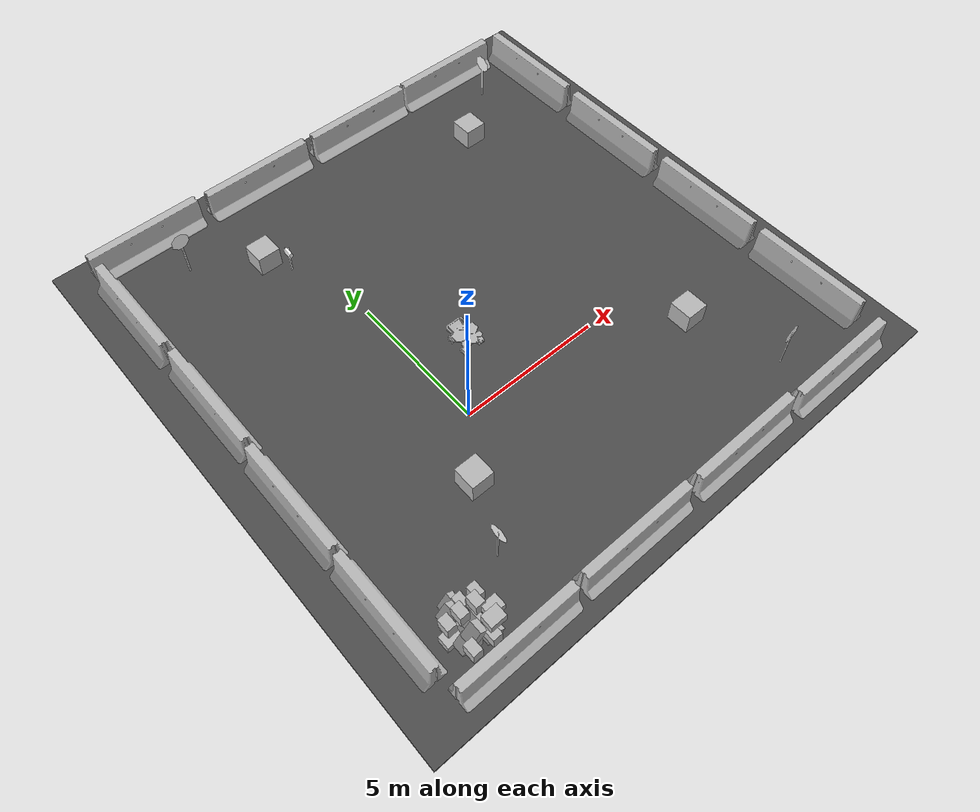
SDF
<sdf version="1.7">
 <model name="world">
  <model name="boxes">
   <model name="cardboard_box">
    <pose>-0.491644 0.289158 0.15 0 -0 0</pose>
    <link name="link">
     <inertial>
      <mass>2</mass>
      <inertia>
       <ixx>0.0416667</ixx>
       <ixy>0</ixy>
       <ixz>0</ixz>
       <iyy>0.0566667</iyy>
       <iyz>0</iyz>
       <izz>0.0683333</izz>
      </inertia>
     </inertial>
     <collision name="collision">
      <geometry><box><size>0.5 0.4 0.3</size></box></geometry>
      <surface>
       <friction><ode><mu>1</mu><mu2>1</mu2></ode></friction>
       <contact><ode><kp>1e+07</kp><kd>1</kd><min_depth>0.001</min_depth><max_vel>0.1</max_vel></ode></contact>
      </surface>
     </collision>
     <visual name="visual">
      <pose>0 0 -0.15 0 -0 0</pose>
      <geometry>
       <mesh><uri>model://cardboard_box/meshes/cardboard_box.dae</uri><scale>1.25932 1.00745 0.755591</scale></mesh>
      </geometry>
     </visual>
    </link>
   </model>
   <model name="cardboard_box_clone">
    <pose>0.503217 0.516816 0.293646 3.14159 -1.53575 3.14159</pose>
    <link name="link">
     <inertial>
      <mass>2</mass>
      <inertia>
       <ixx>0.0416667</ixx>
       <ixy>0</ixy>
       <ixz>0</ixz>
       <iyy>0.0566667</iyy>
       <iyz>0</iyz>
       <izz>0.0683333</izz>
      </inertia>
     </inertial>
     <collision name="collision">
      <geometry><box><size>0.5 0.4 0.3</size></box></geometry>
      <surface>
       <friction><ode><mu>1</mu><mu2>1</mu2></ode></friction>
       <contact><ode><kp>1e+07</kp><kd>1</kd><min_depth>0.001</min_depth><max_vel>0.1</max_vel></ode></contact>
      </surface>
     </collision>
     <visual name="visual">
      <pose>0 0 -0.15 0 -0 0</pose>
      <geometry>
       <mesh><uri>model://cardboard_box/meshes/cardboard_box.dae</uri><scale>1.25932 1.00745 0.755591</scale></mesh>
      </geometry>
     </visual>
    </link>
   </model>
   <model name="cardboard_box_clone_0">
    <pose>-0.187598 0.737458 0.371241 0 -0.858752 0</pose>
    <link name="link">
     <inertial>
      <mass>2</mass>
      <inertia>
       <ixx>0.0416667</ixx>
       <ixy>0</ixy>
       <ixz>0</ixz>
       <iyy>0.0566667</iyy>
       <iyz>0</iyz>
       <izz>0.0683333</izz>
      </inertia>
     </inertial>
     <collision name="collision">
      <geometry><box><size>0.5 0.4 0.3</size></box></geometry>
      <surface>
       <friction><ode><mu>1</mu><mu2>1</mu2></ode></friction>
       <contact><ode><kp>1e+07</kp><kd>1</kd><min_depth>0.001</min_depth><max_vel>0.1</max_vel></ode></contact>
      </surface>
     </collision>
     <visual name="visual">
      <pose>0 0 -0.15 0 -0 0</pose>
      <geometry>
       <mesh><uri>model://cardboard_box/meshes/cardboard_box.dae</uri><scale>1.25932 1.00745 0.755591</scale></mesh>
      </geometry>
     </visual>
    </link>
   </model>
   <model name="cardboard_box_clone_0_clone">
    <pose>-0.306536 -0.085275 0.371241 0 -0.858752 0</pose>
    <link name="link">
     <inertial>
      <mass>2</mass>
      <inertia>
       <ixx>0.0416667</ixx>
       <ixy>0</ixy>
       <ixz>0</ixz>
       <iyy>0.0566667</iyy>
       <iyz>0</iyz>
       <izz>0.0683333</izz>
      </inertia>
     </inertial>
     <collision name="collision">
      <geometry><box><size>0.5 0.4 0.3</size></box></geometry>
      <surface>
       <friction><ode><mu>1</mu><mu2>1</mu2></ode></friction>
       <contact><ode><kp>1e+07</kp><kd>1</kd><min_depth>0.001</min_depth><max_vel>0.1</max_vel></ode></contact>
      </surface>
     </collision>
     <visual name="visual">
      <pose>0 0 -0.15 0 -0 0</pose>
      <geometry>
       <mesh><uri>model://cardboard_box/meshes/cardboard_box.dae</uri><scale>1.25932 1.00745 0.755591</scale></mesh>
      </geometry>
     </visual>
    </link>
   </model>
   <model name="cardboard_box_clone_0_clone_0">
    <pose>-0.148256 -0.203641 1.0062 0 -0.858752 0</pose>
    <link name="link">
     <inertial>
      <mass>2</mass>
      <inertia>
       <ixx>0.0416667</ixx>
       <ixy>0</ixy>
       <ixz>0</ixz>
       <iyy>0.0566667</iyy>
       <iyz>0</iyz>
       <izz>0.0683333</izz>
      </inertia>
     </inertial>
     <collision name="collision">
      <geometry><box><size>0.5 0.4 0.3</size></box></geometry>
      <surface>
       <friction><ode><mu>1</mu><mu2>1</mu2></ode></friction>
       <contact><ode><kp>1e+07</kp><kd>1</kd><min_depth>0.001</min_depth><max_vel>0.1</max_vel></ode></contact>
      </surface>
     </collision>
     <visual name="visual">
      <pose>0 0 -0.15 0 -0 0</pose>
      <geometry>
       <mesh><uri>model://cardboard_box/meshes/cardboard_box.dae</uri><scale>1.25932 1.00745 0.755591</scale></mesh>
      </geometry>
     </visual>
    </link>
   </model>
   <model name="cardboard_box_clone_0_clone_1">
    <pose>0.355638 -0.289562 0.371241 0 -0.858752 0</pose>
    <link name="link">
     <inertial>
      <mass>2</mass>
      <inertia>
       <ixx>0.0416667</ixx>
       <ixy>0</ixy>
       <ixz>0</ixz>
       <iyy>0.0566667</iyy>
       <iyz>0</iyz>
       <izz>0.0683333</izz>
      </inertia>
     </inertial>
     <collision name="collision">
      <geometry><box><size>0.5 0.4 0.3</size></box></geometry>
      <surface>
       <friction><ode><mu>1</mu><mu2>1</mu2></ode></friction>
       <contact><ode><kp>1e+07</kp><kd>1</kd><min_depth>0.001</min_depth><max_vel>0.1</max_vel></ode></contact>
      </surface>
     </collision>
     <visual name="visual">
      <pose>0 0 -0.15 0 -0 0</pose>
      <geometry>
       <mesh><uri>model://cardboard_box/meshes/cardboard_box.dae</uri><scale>1.25932 1.00745 0.755591</scale></mesh>
      </geometry>
     </visual>
    </link>
   </model>
   <model name="cardboard_box_clone_1">
    <pose>0.270936 -0.443428 1.77978 0 -0 0</pose>
    <link name="link">
     <inertial>
      <mass>2</mass>
      <inertia>
       <ixx>0.0416667</ixx>
       <ixy>0</ixy>
       <ixz>0</ixz>
       <iyy>0.0566667</iyy>
       <iyz>0</iyz>
       <izz>0.0683333</izz>
      </inertia>
     </inertial>
     <collision name="collision">
      <geometry><box><size>0.5 0.4 0.3</size></box></geometry>
      <surface>
       <friction><ode><mu>1</mu><mu2>1</mu2></ode></friction>
       <contact><ode><kp>1e+07</kp><kd>1</kd><min_depth>0.001</min_depth><max_vel>0.1</max_vel></ode></contact>
      </surface>
     </collision>
     <visual name="visual">
      <pose>0 0 -0.15 0 -0 0</pose>
      <geometry>
       <mesh><uri>model://cardboard_box/meshes/cardboard_box.dae</uri><scale>1.25932 1.00745 0.755591</scale></mesh>
      </geometry>
     </visual>
    </link>
   </model>
   <model name="cardboard_box_clone_clone">
    <pose>0.207477 -0.499968 0.864015 3.14159 -1.53575 3.14159</pose>
    <link name="link">
     <inertial>
      <mass>2</mass>
      <inertia>
       <ixx>0.0416667</ixx>
       <ixy>0</ixy>
       <ixz>0</ixz>
       <iyy>0.0566667</iyy>
       <iyz>0</iyz>
       <izz>0.0683333</izz>
      </inertia>
     </inertial>
     <collision name="collision">
      <geometry><box><size>0.5 0.4 0.3</size></box></geometry>
      <surface>
       <friction><ode><mu>1</mu><mu2>1</mu2></ode></friction>
       <contact><ode><kp>1e+07</kp><kd>1</kd><min_depth>0.001</min_depth><max_vel>0.1</max_vel></ode></contact>
      </surface>
     </collision>
     <visual name="visual">
      <pose>0 0 -0.15 0 -0 0</pose>
      <geometry>
       <mesh><uri>model://cardboard_box/meshes/cardboard_box.dae</uri><scale>1.25932 1.00745 0.755591</scale></mesh>
      </geometry>
     </visual>
    </link>
   </model>
   <model name="cardboard_box_clone_clone_0">
    <pose>-0.422969 -0.499982 0.945083 3.14159 -1.53575 3.14159</pose>
    <link name="link">
     <inertial>
      <mass>2</mass>
      <inertia>
       <ixx>0.0416667</ixx>
       <ixy>0</ixy>
       <ixz>0</ixz>
       <iyy>0.0566667</iyy>
       <iyz>0</iyz>
       <izz>0.0683333</izz>
      </inertia>
     </inertial>
     <collision name="collision">
      <geometry><box><size>0.5 0.4 0.3</size></box></geometry>
      <surface>
       <friction><ode><mu>1</mu><mu2>1</mu2></ode></friction>
       <contact><ode><kp>1e+07</kp><kd>1</kd><min_depth>0.001</min_depth><max_vel>0.1</max_vel></ode></contact>
      </surface>
     </collision>
     <visual name="visual">
      <pose>0 0 -0.15 0 -0 0</pose>
      <geometry>
       <mesh><uri>model://cardboard_box/meshes/cardboard_box.dae</uri><scale>1.25932 1.00745 0.755591</scale></mesh>
      </geometry>
     </visual>
    </link>
   </model>
   <model name="cardboard_box_clone_clone_clone">
    <pose>-0.058913 0.417894 0.864015 3.14159 -1.53575 3.14159</pose>
    <link name="link">
     <inertial>
      <mass>2</mass>
      <inertia>
       <ixx>0.0416667</ixx>
       <ixy>0</ixy>
       <ixz>0</ixz>
       <iyy>0.0566667</iyy>
       <iyz>0</iyz>
       <izz>0.0683333</izz>
      </inertia>
     </inertial>
     <collision name="collision">
      <geometry><box><size>0.5 0.4 0.3</size></box></geometry>
      <surface>
       <friction><ode><mu>1</mu><mu2>1</mu2></ode></friction>
       <contact><ode><kp>1e+07</kp><kd>1</kd><min_depth>0.001</min_depth><max_vel>0.1</max_vel></ode></contact>
      </surface>
     </collision>
     <visual name="visual">
      <pose>0 0 -0.15 0 -0 0</pose>
      <geometry>
       <mesh><uri>model://cardboard_box/meshes/cardboard_box.dae</uri><scale>1.25932 1.00745 0.755591</scale></mesh>
      </geometry>
     </visual>
    </link>
   </model>
   <model name="cardboard_box_clone_clone_clone_0">
    <pose>0.417599 0.381366 0.864015 3.14159 -1.53575 3.14159</pose>
    <link name="link">
     <inertial>
      <mass>2</mass>
      <inertia>
       <ixx>0.0416667</ixx>
       <ixy>0</ixy>
       <ixz>0</ixz>
       <iyy>0.0566667</iyy>
       <iyz>0</iyz>
       <izz>0.0683333</izz>
      </inertia>
     </inertial>
     <collision name="collision">
      <geometry><box><size>0.5 0.4 0.3</size></box></geometry>
      <surface>
       <friction><ode><mu>1</mu><mu2>1</mu2></ode></friction>
       <contact><ode><kp>1e+07</kp><kd>1</kd><min_depth>0.001</min_depth><max_vel>0.1</max_vel></ode></contact>
      </surface>
     </collision>
     <visual name="visual">
      <pose>0 0 -0.15 0 -0 0</pose>
      <geometry>
       <mesh><uri>model://cardboard_box/meshes/cardboard_box.dae</uri><scale>1.25932 1.00745 0.755591</scale></mesh>
      </geometry>
     </visual>
    </link>
   </model>
   <model name="cardboard_box_clone_clone_clone_1">
    <pose>-0.489667 0.393093 0.864015 3.14159 -1.53575 3.14159</pose>
    <link name="link">
     <inertial>
      <mass>2</mass>
      <inertia>
       <ixx>0.0416667</ixx>
       <ixy>0</ixy>
       <ixz>0</ixz>
       <iyy>0.0566667</iyy>
       <iyz>0</iyz>
       <izz>0.0683333</izz>
      </inertia>
     </inertial>
     <collision name="collision">
      <geometry><box><size>0.5 0.4 0.3</size></box></geometry>
      <surface>
       <friction><ode><mu>1</mu><mu2>1</mu2></ode></friction>
       <contact><ode><kp>1e+07</kp><kd>1</kd><min_depth>0.001</min_depth><max_vel>0.1</max_vel></ode></contact>
      </surface>
     </collision>
     <visual name="visual">
      <pose>0 0 -0.15 0 -0 0</pose>
      <geometry>
       <mesh><uri>model://cardboard_box/meshes/cardboard_box.dae</uri><scale>1.25932 1.00745 0.755591</scale></mesh>
      </geometry>
     </visual>
    </link>
   </model>
   <static>0</static>
   <pose>-4.01139 -4.85188 -0.226943 0 -0 0</pose>
  </model>
  <model name="boxes_0">
   <model name="cardboard_box">
    <pose>-0.491644 0.289158 0.15 0 -0 0</pose>
    <link name="link">
     <inertial>
      <mass>2</mass>
      <inertia>
       <ixx>0.0416667</ixx>
       <ixy>0</ixy>
       <ixz>0</ixz>
       <iyy>0.0566667</iyy>
       <iyz>0</iyz>
       <izz>0.0683333</izz>
      </inertia>
     </inertial>
     <collision name="collision">
      <geometry><box><size>0.5 0.4 0.3</size></box></geometry>
      <surface>
       <friction><ode><mu>1</mu><mu2>1</mu2></ode></friction>
       <contact><ode><kp>1e+07</kp><kd>1</kd><min_depth>0.001</min_depth><max_vel>0.1</max_vel></ode></contact>
      </surface>
     </collision>
     <visual name="visual">
      <pose>0 0 -0.15 0 -0 0</pose>
      <geometry>
       <mesh><uri>model://cardboard_box/meshes/cardboard_box.dae</uri><scale>1.25932 1.00745 0.755591</scale></mesh>
      </geometry>
     </visual>
    </link>
   </model>
   <model name="cardboard_box_clone">
    <pose>0.503217 0.516816 0.293646 3.14159 -1.53575 3.14159</pose>
    <link name="link">
     <inertial>
      <mass>2</mass>
      <inertia>
       <ixx>0.0416667</ixx>
       <ixy>0</ixy>
       <ixz>0</ixz>
       <iyy>0.0566667</iyy>
       <iyz>0</iyz>
       <izz>0.0683333</izz>
      </inertia>
     </inertial>
     <collision name="collision">
      <geometry><box><size>0.5 0.4 0.3</size></box></geometry>
      <surface>
       <friction><ode><mu>1</mu><mu2>1</mu2></ode></friction>
       <contact><ode><kp>1e+07</kp><kd>1</kd><min_depth>0.001</min_depth><max_vel>0.1</max_vel></ode></contact>
      </surface>
     </collision>
     <visual name="visual">
      <pose>0 0 -0.15 0 -0 0</pose>
      <geometry>
       <mesh><uri>model://cardboard_box/meshes/cardboard_box.dae</uri><scale>1.25932 1.00745 0.755591</scale></mesh>
      </geometry>
     </visual>
    </link>
   </model>
   <model name="cardboard_box_clone_0">
    <pose>-0.187598 0.737458 0.371241 0 -0.858752 0</pose>
    <link name="link">
     <inertial>
      <mass>2</mass>
      <inertia>
       <ixx>0.0416667</ixx>
       <ixy>0</ixy>
       <ixz>0</ixz>
       <iyy>0.0566667</iyy>
       <iyz>0</iyz>
       <izz>0.0683333</izz>
      </inertia>
     </inertial>
     <collision name="collision">
      <geometry><box><size>0.5 0.4 0.3</size></box></geometry>
      <surface>
       <friction><ode><mu>1</mu><mu2>1</mu2></ode></friction>
       <contact><ode><kp>1e+07</kp><kd>1</kd><min_depth>0.001</min_depth><max_vel>0.1</max_vel></ode></contact>
      </surface>
     </collision>
     <visual name="visual">
      <pose>0 0 -0.15 0 -0 0</pose>
      <geometry>
       <mesh><uri>model://cardboard_box/meshes/cardboard_box.dae</uri><scale>1.25932 1.00745 0.755591</scale></mesh>
      </geometry>
     </visual>
    </link>
   </model>
   <model name="cardboard_box_clone_0_clone">
    <pose>-0.306536 -0.085275 0.371241 0 -0.858752 0</pose>
    <link name="link">
     <inertial>
      <mass>2</mass>
      <inertia>
       <ixx>0.0416667</ixx>
       <ixy>0</ixy>
       <ixz>0</ixz>
       <iyy>0.0566667</iyy>
       <iyz>0</iyz>
       <izz>0.0683333</izz>
      </inertia>
     </inertial>
     <collision name="collision">
      <geometry><box><size>0.5 0.4 0.3</size></box></geometry>
      <surface>
       <friction><ode><mu>1</mu><mu2>1</mu2></ode></friction>
       <contact><ode><kp>1e+07</kp><kd>1</kd><min_depth>0.001</min_depth><max_vel>0.1</max_vel></ode></contact>
      </surface>
     </collision>
     <visual name="visual">
      <pose>0 0 -0.15 0 -0 0</pose>
      <geometry>
       <mesh><uri>model://cardboard_box/meshes/cardboard_box.dae</uri><scale>1.25932 1.00745 0.755591</scale></mesh>
      </geometry>
     </visual>
    </link>
   </model>
   <model name="cardboard_box_clone_0_clone_0">
    <pose>-0.148256 -0.203641 1.0062 0 -0.858752 0</pose>
    <link name="link">
     <inertial>
      <mass>2</mass>
      <inertia>
       <ixx>0.0416667</ixx>
       <ixy>0</ixy>
       <ixz>0</ixz>
       <iyy>0.0566667</iyy>
       <iyz>0</iyz>
       <izz>0.0683333</izz>
      </inertia>
     </inertial>
     <collision name="collision">
      <geometry><box><size>0.5 0.4 0.3</size></box></geometry>
      <surface>
       <friction><ode><mu>1</mu><mu2>1</mu2></ode></friction>
       <contact><ode><kp>1e+07</kp><kd>1</kd><min_depth>0.001</min_depth><max_vel>0.1</max_vel></ode></contact>
      </surface>
     </collision>
     <visual name="visual">
      <pose>0 0 -0.15 0 -0 0</pose>
      <geometry>
       <mesh><uri>model://cardboard_box/meshes/cardboard_box.dae</uri><scale>1.25932 1.00745 0.755591</scale></mesh>
      </geometry>
     </visual>
    </link>
   </model>
   <model name="cardboard_box_clone_0_clone_1">
    <pose>0.355638 -0.289562 0.371241 0 -0.858752 0</pose>
    <link name="link">
     <inertial>
      <mass>2</mass>
      <inertia>
       <ixx>0.0416667</ixx>
       <ixy>0</ixy>
       <ixz>0</ixz>
       <iyy>0.0566667</iyy>
       <iyz>0</iyz>
       <izz>0.0683333</izz>
      </inertia>
     </inertial>
     <collision name="collision">
      <geometry><box><size>0.5 0.4 0.3</size></box></geometry>
      <surface>
       <friction><ode><mu>1</mu><mu2>1</mu2></ode></friction>
       <contact><ode><kp>1e+07</kp><kd>1</kd><min_depth>0.001</min_depth><max_vel>0.1</max_vel></ode></contact>
      </surface>
     </collision>
     <visual name="visual">
      <pose>0 0 -0.15 0 -0 0</pose>
      <geometry>
       <mesh><uri>model://cardboard_box/meshes/cardboard_box.dae</uri><scale>1.25932 1.00745 0.755591</scale></mesh>
      </geometry>
     </visual>
    </link>
   </model>
   <model name="cardboard_box_clone_1">
    <pose>0.270936 -0.443428 1.77978 0 -0 0</pose>
    <link name="link">
     <inertial>
      <mass>2</mass>
      <inertia>
       <ixx>0.0416667</ixx>
       <ixy>0</ixy>
       <ixz>0</ixz>
       <iyy>0.0566667</iyy>
       <iyz>0</iyz>
       <izz>0.0683333</izz>
      </inertia>
     </inertial>
     <collision name="collision">
      <geometry><box><size>0.5 0.4 0.3</size></box></geometry>
      <surface>
       <friction><ode><mu>1</mu><mu2>1</mu2></ode></friction>
       <contact><ode><kp>1e+07</kp><kd>1</kd><min_depth>0.001</min_depth><max_vel>0.1</max_vel></ode></contact>
      </surface>
     </collision>
     <visual name="visual">
      <pose>0 0 -0.15 0 -0 0</pose>
      <geometry>
       <mesh><uri>model://cardboard_box/meshes/cardboard_box.dae</uri><scale>1.25932 1.00745 0.755591</scale></mesh>
      </geometry>
     </visual>
    </link>
   </model>
   <model name="cardboard_box_clone_clone">
    <pose>0.207477 -0.499968 0.864015 3.14159 -1.53575 3.14159</pose>
    <link name="link">
     <inertial>
      <mass>2</mass>
      <inertia>
       <ixx>0.0416667</ixx>
       <ixy>0</ixy>
       <ixz>0</ixz>
       <iyy>0.0566667</iyy>
       <iyz>0</iyz>
       <izz>0.0683333</izz>
      </inertia>
     </inertial>
     <collision name="collision">
      <geometry><box><size>0.5 0.4 0.3</size></box></geometry>
      <surface>
       <friction><ode><mu>1</mu><mu2>1</mu2></ode></friction>
       <contact><ode><kp>1e+07</kp><kd>1</kd><min_depth>0.001</min_depth><max_vel>0.1</max_vel></ode></contact>
      </surface>
     </collision>
     <visual name="visual">
      <pose>0 0 -0.15 0 -0 0</pose>
      <geometry>
       <mesh><uri>model://cardboard_box/meshes/cardboard_box.dae</uri><scale>1.25932 1.00745 0.755591</scale></mesh>
      </geometry>
     </visual>
    </link>
   </model>
   <model name="cardboard_box_clone_clone_0">
    <pose>-0.422969 -0.499982 0.945083 3.14159 -1.53575 3.14159</pose>
    <link name="link">
     <inertial>
      <mass>2</mass>
      <inertia>
       <ixx>0.0416667</ixx>
       <ixy>0</ixy>
       <ixz>0</ixz>
       <iyy>0.0566667</iyy>
       <iyz>0</iyz>
       <izz>0.0683333</izz>
      </inertia>
     </inertial>
     <collision name="collision">
      <geometry><box><size>0.5 0.4 0.3</size></box></geometry>
      <surface>
       <friction><ode><mu>1</mu><mu2>1</mu2></ode></friction>
       <contact><ode><kp>1e+07</kp><kd>1</kd><min_depth>0.001</min_depth><max_vel>0.1</max_vel></ode></contact>
      </surface>
     </collision>
     <visual name="visual">
      <pose>0 0 -0.15 0 -0 0</pose>
      <geometry>
       <mesh><uri>model://cardboard_box/meshes/cardboard_box.dae</uri><scale>1.25932 1.00745 0.755591</scale></mesh>
      </geometry>
     </visual>
    </link>
   </model>
   <model name="cardboard_box_clone_clone_clone">
    <pose>-0.058913 0.417894 0.864015 3.14159 -1.53575 3.14159</pose>
    <link name="link">
     <inertial>
      <mass>2</mass>
      <inertia>
       <ixx>0.0416667</ixx>
       <ixy>0</ixy>
       <ixz>0</ixz>
       <iyy>0.0566667</iyy>
       <iyz>0</iyz>
       <izz>0.0683333</izz>
      </inertia>
     </inertial>
     <collision name="collision">
      <geometry><box><size>0.5 0.4 0.3</size></box></geometry>
      <surface>
       <friction><ode><mu>1</mu><mu2>1</mu2></ode></friction>
       <contact><ode><kp>1e+07</kp><kd>1</kd><min_depth>0.001</min_depth><max_vel>0.1</max_vel></ode></contact>
      </surface>
     </collision>
     <visual name="visual">
      <pose>0 0 -0.15 0 -0 0</pose>
      <geometry>
       <mesh><uri>model://cardboard_box/meshes/cardboard_box.dae</uri><scale>1.25932 1.00745 0.755591</scale></mesh>
      </geometry>
     </visual>
    </link>
   </model>
   <model name="cardboard_box_clone_clone_clone_0">
    <pose>0.417599 0.381366 0.864015 3.14159 -1.53575 3.14159</pose>
    <link name="link">
     <inertial>
      <mass>2</mass>
      <inertia>
       <ixx>0.0416667</ixx>
       <ixy>0</ixy>
       <ixz>0</ixz>
       <iyy>0.0566667</iyy>
       <iyz>0</iyz>
       <izz>0.0683333</izz>
      </inertia>
     </inertial>
     <collision name="collision">
      <geometry><box><size>0.5 0.4 0.3</size></box></geometry>
      <surface>
       <friction><ode><mu>1</mu><mu2>1</mu2></ode></friction>
       <contact><ode><kp>1e+07</kp><kd>1</kd><min_depth>0.001</min_depth><max_vel>0.1</max_vel></ode></contact>
      </surface>
     </collision>
     <visual name="visual">
      <pose>0 0 -0.15 0 -0 0</pose>
      <geometry>
       <mesh><uri>model://cardboard_box/meshes/cardboard_box.dae</uri><scale>1.25932 1.00745 0.755591</scale></mesh>
      </geometry>
     </visual>
    </link>
   </model>
   <model name="cardboard_box_clone_clone_clone_1">
    <pose>-0.489667 0.393093 0.864015 3.14159 -1.53575 3.14159</pose>
    <link name="link">
     <inertial>
      <mass>2</mass>
      <inertia>
       <ixx>0.0416667</ixx>
       <ixy>0</ixy>
       <ixz>0</ixz>
       <iyy>0.0566667</iyy>
       <iyz>0</iyz>
       <izz>0.0683333</izz>
      </inertia>
     </inertial>
     <collision name="collision">
      <geometry><box><size>0.5 0.4 0.3</size></box></geometry>
      <surface>
       <friction><ode><mu>1</mu><mu2>1</mu2></ode></friction>
       <contact><ode><kp>1e+07</kp><kd>1</kd><min_depth>0.001</min_depth><max_vel>0.1</max_vel></ode></contact>
      </surface>
     </collision>
     <visual name="visual">
      <pose>0 0 -0.15 0 -0 0</pose>
      <geometry>
       <mesh><uri>model://cardboard_box/meshes/cardboard_box.dae</uri><scale>1.25932 1.00745 0.755591</scale></mesh>
      </geometry>
     </visual>
    </link>
   </model>
   <static>0</static>
   <pose>-4.41044 -5.3206 0.732081 0 -0 0</pose>
  </model>
  <model name="plane">
   <model name="asphalt_plane">
    <static>1</static>
    <link name="link">
     <collision name="collision"><geometry><box><size>20 20 0.1</size></box></geometry></collision>
     <visual name="visual">
      <cast_shadows>0</cast_shadows>
      <geometry><box><size>20 20 0.1</size></box></geometry>
      <material>
       <script>
        <uri>model://asphalt_plane/materials/scripts</uri>
        <uri>model://asphalt_plane/materials/textures</uri>
        <name>vrc/asphalt</name>
       </script>
      </material>
     </visual>
    </link>
   </model>
   <static>0</static>
   <pose>2.93325 3.04008 -0.226943 0 -0 0</pose>
  </model>
  <model name="random_objects">
   <model name="Mailbox">
    <link name="link">
     <collision name="collision">
      <geometry><mesh><uri>model://mailbox/meshes/mailbox.dae</uri></mesh></geometry>
     </collision>
     <visual name="visual">
      <geometry><mesh><uri>model://mailbox/meshes/mailbox.dae</uri></mesh></geometry>
      <material>
       <script>
        <uri>model://mailbox/materials/scripts</uri>
        <uri>model://mailbox/materials/textures</uri>
        <name>Mailbox/Diffuse</name>
       </script>
      </material>
     </visual>
    </link>
    <pose>-3.4216 4.47698 -0.16 0 -0 0</pose>
   </model>
   <model name="Stop Sign_0_clone">
    <static>1</static>
    <link name="link">
     <collision name="collision">
      <geometry><mesh><uri>model://stop_sign/meshes/stop_sign.dae</uri></mesh></geometry>
     </collision>
     <visual name="visual">
      <geometry><mesh><uri>model://stop_sign/meshes/stop_sign.dae</uri></mesh></geometry>
      <material>
       <script>
        <uri>model://stop_sign/materials/scripts</uri>
        <uri>model://stop_sign/materials/textures</uri>
        <name>StopSign/Diffuse</name>
       </script>
      </material>
     </visual>
    </link>
    <pose>-4.94576 -7.59217 -0.16 0 -0 1.61541</pose>
   </model>
   <model name="Stop Sign_0_clone_0">
    <static>1</static>
    <link name="link">
     <collision name="collision">
      <geometry><mesh><uri>model://stop_sign/meshes/stop_sign.dae</uri></mesh></geometry>
     </collision>
     <visual name="visual">
      <geometry><mesh><uri>model://stop_sign/meshes/stop_sign.dae</uri></mesh></geometry>
      <material>
       <script>
        <uri>model://stop_sign/materials/scripts</uri>
        <uri>model://stop_sign/materials/textures</uri>
        <name>StopSign/Diffuse</name>
       </script>
      </material>
     </visual>
    </link>
    <pose>-6.03772 6.65052 -0.16 0 -0 0</pose>
   </model>
   <model name="Stop Sign_0_clone_1">
    <static>1</static>
    <link name="link">
     <collision name="collision">
      <geometry><mesh><uri>model://stop_sign/meshes/stop_sign.dae</uri></mesh></geometry>
     </collision>
     <visual name="visual">
      <geometry><mesh><uri>model://stop_sign/meshes/stop_sign.dae</uri></mesh></geometry>
      <material>
       <script>
        <uri>model://stop_sign/materials/scripts</uri>
        <uri>model://stop_sign/materials/textures</uri>
        <name>StopSign/Diffuse</name>
       </script>
      </material>
     </visual>
    </link>
    <pose>7.08648 6.88153 -0.16 0 0 -1.56745</pose>
   </model>
   <model name="Stop Sign_clone">
    <static>1</static>
    <link name="link">
     <collision name="collision">
      <geometry><mesh><uri>model://stop_sign/meshes/stop_sign.dae</uri></mesh></geometry>
     </collision>
     <visual name="visual">
      <geometry><mesh><uri>model://stop_sign/meshes/stop_sign.dae</uri></mesh></geometry>
      <material>
       <script>
        <uri>model://stop_sign/materials/scripts</uri>
        <uri>model://stop_sign/materials/textures</uri>
        <name>StopSign/Diffuse</name>
       </script>
      </material>
     </visual>
    </link>
    <pose>5.99908 -8.57347 -0.16 0 0 -3.05978</pose>
   </model>
   <model name="mars_rover">
    <static>1</static>
    <link name="link">
     <collision name="solar_panel_collision">
      <pose>0 -0.06945 0.47293 0 -0 0</pose>
      <geometry><box><size>0.87974 0.8821 0.02602</size></box></geometry>
     </collision>
     <collision name="chassis_collision">
      <pose>0 -0.05 0.31475 0 -0 0</pose>
      <geometry><box><size>0.49522 0.67401 0.28915</size></box></geometry>
     </collision>
     <collision name="rear_left_bumper_collision">
      <pose>0.30107 0.3835 0.38976 0 -0 0</pose>
      <geometry><box><size>0.04442 0.38897 0.07918</size></box></geometry>
     </collision>
     <collision name="rear_right_bumper_collision">
      <pose>-0.30107 0.3835 0.38976 0 -0 0</pose>
      <geometry><box><size>0.04442 0.38897 0.07918</size></box></geometry>
     </collision>
     <collision name="rear_bumper_collision">
      <pose>0 0.59414 0.38976 0 -0 0</pose>
      <geometry><box><size>0.56656 0.04442 0.07918</size></box></geometry>
     </collision>
     <collision name="bin_back_panel_collision">
      <pose>0 0.47 0.32114 0.69137 -0 0</pose>
      <geometry><box><size>0.43774 0.212366 0.05173</size></box></geometry>
     </collision>
     <collision name="bin_left_panel_collision1">
      <pose>0.22615 0.32897 0.33193 0 -0 0</pose>
      <geometry><box><size>0.01116 0.19338 0.16304</size></box></geometry>
     </collision>
     <collision name="bin_left_panel_collision2">
      <pose>0.22615 0.471 0.39308 0 -0 0</pose>
      <geometry><box><size>0.01116 0.15 0.04</size></box></geometry>
     </collision>
     <collision name="bin_left_panel_collision3">
      <pose>0.22615 0.45 0.35308 0 -0 0</pose>
      <geometry><box><size>0.01116 0.15 0.04</size></box></geometry>
     </collision>
     <collision name="bin_left_panel_collision4">
      <pose>0.22615 0.39308 0.31308 0 -0 0</pose>
      <geometry><box><size>0.01116 0.15 0.04</size></box></geometry>
     </collision>
     <collision name="bin_right_panel_collision1">
      <pose>-0.22615 0.32897 0.33193 0 -0 0</pose>
      <geometry><box><size>0.01116 0.19338 0.16304</size></box></geometry>
     </collision>
     <collision name="bin_right_panel_collision2">
      <pose>-0.22615 0.471 0.39308 0 -0 0</pose>
      <geometry><box><size>0.01116 0.15 0.04</size></box></geometry>
     </collision>
     <collision name="bin_right_panel_collision3">
      <pose>-0.22615 0.45 0.35308 0 -0 0</pose>
      <geometry><box><size>0.01116 0.15 0.04</size></box></geometry>
     </collision>
     <collision name="bin_right_panel_collision4">
      <pose>-0.22615 0.39308 0.31308 0 -0 0</pose>
      <geometry><box><size>0.01116 0.15 0.04</size></box></geometry>
     </collision>
     <collision name="bin_front_panel_collision">
      <pose>0 0.30047 0.32114 2.26207 -0 0</pose>
      <geometry><box><size>0.43774 0.212366 0.05173</size></box></geometry>
     </collision>
     <collision name="front_left_wheel_collision">
      <pose>0.31103 -0.32115 0.1358 1.5707 0 1.5707</pose>
      <geometry><cylinder><radius>0.1358</radius><length>0.1641</length></cylinder></geometry>
     </collision>
     <collision name="front_right_wheel_collision">
      <pose>-0.31103 -0.32115 0.1358 1.5707 0 1.5707</pose>
      <geometry><cylinder><radius>0.1358</radius><length>0.1641</length></cylinder></geometry>
     </collision>
     <collision name="rear_left_wheel_collision">
      <pose>0.31103 0.28049 0.1358 1.5707 0 1.5707</pose>
      <geometry><cylinder><radius>0.1358</radius><length>0.1641</length></cylinder></geometry>
     </collision>
     <collision name="rear_right_wheel_collision">
      <pose>-0.31103 0.28049 0.1358 1.5707 0 1.5707</pose>
      <geometry><cylinder><radius>0.1358</radius><length>0.1641</length></cylinder></geometry>
     </collision>
     <visual name="visual">
      <geometry><mesh><uri>model://mars_rover/meshes/rover.dae</uri></mesh></geometry>
     </visual>
    </link>
    <pose>-0.92778 -1.53386 -0.16 0 -0 0</pose>
   </model>
   <model name="number1_0">
    <pose>5.00525 -5.49046 0.24 0 -0 0</pose>
    <static>1</static>
    <link name="link">
     <visual name="visual">
      <geometry><mesh><uri>model://number1/meshes/number.dae</uri></mesh></geometry>
      <material>
       <script>
        <uri>model://number1/materials/scripts</uri>
        <uri>model://number1/materials/textures</uri>
        <name>Number/One</name>
       </script>
      </material>
     </visual>
    </link>
   </model>
   <model name="number2">
    <pose>-3.97827 -5.50331 0.24 0 -0 0</pose>
    <static>1</static>
    <link name="link">
     <visual name="visual">
      <geometry><mesh><uri>model://number1/meshes/number.dae</uri></mesh></geometry>
      <material>
       <script>
        <uri>model://number2/materials/scripts</uri>
        <uri>model://number2/materials/textures</uri>
        <name>Number/Two</name>
       </script>
      </material>
     </visual>
    </link>
   </model>
   <model name="number3">
    <pose>-3.92317 5.29732 0.24 0 -0 0</pose>
    <static>1</static>
    <link name="link">
     <visual name="visual">
      <geometry><mesh><uri>model://number1/meshes/number.dae</uri></mesh></geometry>
      <material>
       <script>
        <uri>model://number3/materials/scripts</uri>
        <uri>model://number3/materials/textures</uri>
        <name>Number/Three</name>
       </script>
      </material>
     </visual>
    </link>
   </model>
   <model name="number4">
    <pose>5.1435 5.38692 0.24 0 -0 0</pose>
    <static>1</static>
    <link name="link">
     <visual name="visual">
      <geometry><mesh><uri>model://number1/meshes/number.dae</uri></mesh></geometry>
      <material>
       <script>
        <uri>model://number4/materials/scripts</uri>
        <uri>model://number4/materials/textures</uri>
        <name>Number/Four</name>
       </script>
      </material>
     </visual>
    </link>
   </model>
   <static>0</static>
   <pose>2.67552 3.75103 -0.051251 0 -0 0</pose>
  </model>
  <model name="simple_barriers">
   <model name="jersey_barrier">
    <static>1</static>
    <link name="link">
     <visual name="visual">
      <geometry><mesh><uri>model://jersey_barrier/meshes/jersey_barrier.dae</uri></mesh></geometry>
     </visual>
     <collision name="upright">
      <pose>0 0 0.5715 0 -0 0</pose>
      <geometry><box><size>4.06542 0.3063 1.143</size></box></geometry>
     </collision>
     <collision name="base">
      <pose>0 0 0.032258 0 -0 0</pose>
      <geometry><box><size>4.06542 0.8107 0.064516</size></box></geometry>
     </collision>
     <collision name="base2">
      <pose>0 0 0.1 0 -0 0</pose>
      <geometry><box><size>4.06542 0.65 0.1</size></box></geometry>
     </collision>
     <collision name="base3">
      <pose>0 0 0.2 0 -0 0</pose>
      <geometry><box><size>4.06542 0.5 0.1</size></box></geometry>
     </collision>
     <collision name="left-angle">
      <pose>0 -0.224 0.2401 0.9 -0 0</pose>
      <geometry><box><size>4.06542 0.5 0.064516</size></box></geometry>
     </collision>
     <collision name="right-angle">
      <pose>0 0.224 0.2401 -0.9 0 0</pose>
      <geometry><box><size>4.06542 0.5 0.064516</size></box></geometry>
     </collision>
    </link>
    <pose>6.72232 -9.57254 0 0 -0 0</pose>
   </model>
   <model name="jersey_barrier_clone">
    <static>1</static>
    <link name="link">
     <visual name="visual">
      <geometry><mesh><uri>model://jersey_barrier/meshes/jersey_barrier.dae</uri></mesh></geometry>
     </visual>
     <collision name="upright">
      <pose>0 0 0.5715 0 -0 0</pose>
      <geometry><box><size>4.06542 0.3063 1.143</size></box></geometry>
     </collision>
     <collision name="base">
      <pose>0 0 0.032258 0 -0 0</pose>
      <geometry><box><size>4.06542 0.8107 0.064516</size></box></geometry>
     </collision>
     <collision name="base2">
      <pose>0 0 0.1 0 -0 0</pose>
      <geometry><box><size>4.06542 0.65 0.1</size></box></geometry>
     </collision>
     <collision name="base3">
      <pose>0 0 0.2 0 -0 0</pose>
      <geometry><box><size>4.06542 0.5 0.1</size></box></geometry>
     </collision>
     <collision name="left-angle">
      <pose>0 -0.224 0.2401 0.9 -0 0</pose>
      <geometry><box><size>4.06542 0.5 0.064516</size></box></geometry>
     </collision>
     <collision name="right-angle">
      <pose>0 0.224 0.2401 -0.9 0 0</pose>
      <geometry><box><size>4.06542 0.5 0.064516</size></box></geometry>
     </collision>
    </link>
    <pose>2.41736 -9.45601 0 0 -0 0</pose>
   </model>
   <model name="jersey_barrier_clone_0">
    <static>1</static>
    <link name="link">
     <visual name="visual">
      <geometry><mesh><uri>model://jersey_barrier/meshes/jersey_barrier.dae</uri></mesh></geometry>
     </visual>
     <collision name="upright">
      <pose>0 0 0.5715 0 -0 0</pose>
      <geometry><box><size>4.06542 0.3063 1.143</size></box></geometry>
     </collision>
     <collision name="base">
      <pose>0 0 0.032258 0 -0 0</pose>
      <geometry><box><size>4.06542 0.8107 0.064516</size></box></geometry>
     </collision>
     <collision name="base2">
      <pose>0 0 0.1 0 -0 0</pose>
      <geometry><box><size>4.06542 0.65 0.1</size></box></geometry>
     </collision>
     <collision name="base3">
      <pose>0 0 0.2 0 -0 0</pose>
      <geometry><box><size>4.06542 0.5 0.1</size></box></geometry>
     </collision>
     <collision name="left-angle">
      <pose>0 -0.224 0.2401 0.9 -0 0</pose>
      <geometry><box><size>4.06542 0.5 0.064516</size></box></geometry>
     </collision>
     <collision name="right-angle">
      <pose>0 0.224 0.2401 -0.9 0 0</pose>
      <geometry><box><size>4.06542 0.5 0.064516</size></box></geometry>
     </collision>
    </link>
    <pose>-1.99235 -9.42689 0 0 -0 0</pose>
   </model>
   <model name="jersey_barrier_clone_1">
    <static>1</static>
    <link name="link">
     <visual name="visual">
      <geometry><mesh><uri>model://jersey_barrier/meshes/jersey_barrier.dae</uri></mesh></geometry>
     </visual>
     <collision name="upright">
      <pose>0 0 0.5715 0 -0 0</pose>
      <geometry><box><size>4.06542 0.3063 1.143</size></box></geometry>
     </collision>
     <collision name="base">
      <pose>0 0 0.032258 0 -0 0</pose>
      <geometry><box><size>4.06542 0.8107 0.064516</size></box></geometry>
     </collision>
     <collision name="base2">
      <pose>0 0 0.1 0 -0 0</pose>
      <geometry><box><size>4.06542 0.65 0.1</size></box></geometry>
     </collision>
     <collision name="base3">
      <pose>0 0 0.2 0 -0 0</pose>
      <geometry><box><size>4.06542 0.5 0.1</size></box></geometry>
     </collision>
     <collision name="left-angle">
      <pose>0 -0.224 0.2401 0.9 -0 0</pose>
      <geometry><box><size>4.06542 0.5 0.064516</size></box></geometry>
     </collision>
     <collision name="right-angle">
      <pose>0 0.224 0.2401 -0.9 0 0</pose>
      <geometry><box><size>4.06542 0.5 0.064516</size></box></geometry>
     </collision>
    </link>
    <pose>-6.36451 -9.45293 0 0 -0 0</pose>
   </model>
   <model name="jersey_barrier_clone_1_clone_clone">
    <static>1</static>
    <link name="link">
     <visual name="visual">
      <geometry><mesh><uri>model://jersey_barrier/meshes/jersey_barrier.dae</uri></mesh></geometry>
     </visual>
     <collision name="upright">
      <pose>0 0 0.5715 0 -0 0</pose>
      <geometry><box><size>4.06542 0.3063 1.143</size></box></geometry>
     </collision>
     <collision name="base">
      <pose>0 0 0.032258 0 -0 0</pose>
      <geometry><box><size>4.06542 0.8107 0.064516</size></box></geometry>
     </collision>
     <collision name="base2">
      <pose>0 0 0.1 0 -0 0</pose>
      <geometry><box><size>4.06542 0.65 0.1</size></box></geometry>
     </collision>
     <collision name="base3">
      <pose>0 0 0.2 0 -0 0</pose>
      <geometry><box><size>4.06542 0.5 0.1</size></box></geometry>
     </collision>
     <collision name="left-angle">
      <pose>0 -0.224 0.2401 0.9 -0 0</pose>
      <geometry><box><size>4.06542 0.5 0.064516</size></box></geometry>
     </collision>
     <collision name="right-angle">
      <pose>0 0.224 0.2401 -0.9 0 0</pose>
      <geometry><box><size>4.06542 0.5 0.064516</size></box></geometry>
     </collision>
    </link>
    <pose>-6.6933 8.73444 0 0 -0 0</pose>
   </model>
   <model name="jersey_barrier_clone_1_clone_clone_0">
    <static>1</static>
    <link name="link">
     <visual name="visual">
      <geometry><mesh><uri>model://jersey_barrier/meshes/jersey_barrier.dae</uri></mesh></geometry>
     </visual>
     <collision name="upright">
      <pose>0 0 0.5715 0 -0 0</pose>
      <geometry><box><size>4.06542 0.3063 1.143</size></box></geometry>
     </collision>
     <collision name="base">
      <pose>0 0 0.032258 0 -0 0</pose>
      <geometry><box><size>4.06542 0.8107 0.064516</size></box></geometry>
     </collision>
     <collision name="base2">
      <pose>0 0 0.1 0 -0 0</pose>
      <geometry><box><size>4.06542 0.65 0.1</size></box></geometry>
     </collision>
     <collision name="base3">
      <pose>0 0 0.2 0 -0 0</pose>
      <geometry><box><size>4.06542 0.5 0.1</size></box></geometry>
     </collision>
     <collision name="left-angle">
      <pose>0 -0.224 0.2401 0.9 -0 0</pose>
      <geometry><box><size>4.06542 0.5 0.064516</size></box></geometry>
     </collision>
     <collision name="right-angle">
      <pose>0 0.224 0.2401 -0.9 0 0</pose>
      <geometry><box><size>4.06542 0.5 0.064516</size></box></geometry>
     </collision>
    </link>
    <pose>-2.28503 8.63557 0 0 -0 0</pose>
   </model>
   <model name="jersey_barrier_clone_1_clone_clone_1">
    <static>1</static>
    <link name="link">
     <visual name="visual">
      <geometry><mesh><uri>model://jersey_barrier/meshes/jersey_barrier.dae</uri></mesh></geometry>
     </visual>
     <collision name="upright">
      <pose>0 0 0.5715 0 -0 0</pose>
      <geometry><box><size>4.06542 0.3063 1.143</size></box></geometry>
     </collision>
     <collision name="base">
      <pose>0 0 0.032258 0 -0 0</pose>
      <geometry><box><size>4.06542 0.8107 0.064516</size></box></geometry>
     </collision>
     <collision name="base2">
      <pose>0 0 0.1 0 -0 0</pose>
      <geometry><box><size>4.06542 0.65 0.1</size></box></geometry>
     </collision>
     <collision name="base3">
      <pose>0 0 0.2 0 -0 0</pose>
      <geometry><box><size>4.06542 0.5 0.1</size></box></geometry>
     </collision>
     <collision name="left-angle">
      <pose>0 -0.224 0.2401 0.9 -0 0</pose>
      <geometry><box><size>4.06542 0.5 0.064516</size></box></geometry>
     </collision>
     <collision name="right-angle">
      <pose>0 0.224 0.2401 -0.9 0 0</pose>
      <geometry><box><size>4.06542 0.5 0.064516</size></box></geometry>
     </collision>
    </link>
    <pose>2.07504 8.61102 0 0 -0 0</pose>
   </model>
   <model name="jersey_barrier_clone_1_clone_clone_1_clone">
    <static>1</static>
    <link name="link">
     <visual name="visual">
      <geometry><mesh><uri>model://jersey_barrier/meshes/jersey_barrier.dae</uri></mesh></geometry>
     </visual>
     <collision name="upright">
      <pose>0 0 0.5715 0 -0 0</pose>
      <geometry><box><size>4.06542 0.3063 1.143</size></box></geometry>
     </collision>
     <collision name="base">
      <pose>0 0 0.032258 0 -0 0</pose>
      <geometry><box><size>4.06542 0.8107 0.064516</size></box></geometry>
     </collision>
     <collision name="base2">
      <pose>0 0 0.1 0 -0 0</pose>
      <geometry><box><size>4.06542 0.65 0.1</size></box></geometry>
     </collision>
     <collision name="base3">
      <pose>0 0 0.2 0 -0 0</pose>
      <geometry><box><size>4.06542 0.5 0.1</size></box></geometry>
     </collision>
     <collision name="left-angle">
      <pose>0 -0.224 0.2401 0.9 -0 0</pose>
      <geometry><box><size>4.06542 0.5 0.064516</size></box></geometry>
     </collision>
     <collision name="right-angle">
      <pose>0 0.224 0.2401 -0.9 0 0</pose>
      <geometry><box><size>4.06542 0.5 0.064516</size></box></geometry>
     </collision>
    </link>
    <pose>6.22276 8.61449 0 0 -0 0</pose>
   </model>
   <model name="jersey_barrier_clone_2_clone_clone">
    <static>1</static>
    <link name="link">
     <visual name="visual">
      <geometry><mesh><uri>model://jersey_barrier/meshes/jersey_barrier.dae</uri></mesh></geometry>
     </visual>
     <collision name="upright">
      <pose>0 0 0.5715 0 -0 0</pose>
      <geometry><box><size>4.06542 0.3063 1.143</size></box></geometry>
     </collision>
     <collision name="base">
      <pose>0 0 0.032258 0 -0 0</pose>
      <geometry><box><size>4.06542 0.8107 0.064516</size></box></geometry>
     </collision>
     <collision name="base2">
      <pose>0 0 0.1 0 -0 0</pose>
      <geometry><box><size>4.06542 0.65 0.1</size></box></geometry>
     </collision>
     <collision name="base3">
      <pose>0 0 0.2 0 -0 0</pose>
      <geometry><box><size>4.06542 0.5 0.1</size></box></geometry>
     </collision>
     <collision name="left-angle">
      <pose>0 -0.224 0.2401 0.9 -0 0</pose>
      <geometry><box><size>4.06542 0.5 0.064516</size></box></geometry>
     </collision>
     <collision name="right-angle">
      <pose>0 0.224 0.2401 -0.9 0 0</pose>
      <geometry><box><size>4.06542 0.5 0.064516</size></box></geometry>
     </collision>
    </link>
    <pose>-8.52553 -6.72648 0 0 0 -1.56654</pose>
   </model>
   <model name="jersey_barrier_clone_2_clone_clone_0">
    <static>1</static>
    <link name="link">
     <visual name="visual">
      <geometry><mesh><uri>model://jersey_barrier/meshes/jersey_barrier.dae</uri></mesh></geometry>
     </visual>
     <collision name="upright">
      <pose>0 0 0.5715 0 -0 0</pose>
      <geometry><box><size>4.06542 0.3063 1.143</size></box></geometry>
     </collision>
     <collision name="base">
      <pose>0 0 0.032258 0 -0 0</pose>
      <geometry><box><size>4.06542 0.8107 0.064516</size></box></geometry>
     </collision>
     <collision name="base2">
      <pose>0 0 0.1 0 -0 0</pose>
      <geometry><box><size>4.06542 0.65 0.1</size></box></geometry>
     </collision>
     <collision name="base3">
      <pose>0 0 0.2 0 -0 0</pose>
      <geometry><box><size>4.06542 0.5 0.1</size></box></geometry>
     </collision>
     <collision name="left-angle">
      <pose>0 -0.224 0.2401 0.9 -0 0</pose>
      <geometry><box><size>4.06542 0.5 0.064516</size></box></geometry>
     </collision>
     <collision name="right-angle">
      <pose>0 0.224 0.2401 -0.9 0 0</pose>
      <geometry><box><size>4.06542 0.5 0.064516</size></box></geometry>
     </collision>
    </link>
    <pose>-8.52348 -2.48786 0 0 0 -1.56654</pose>
   </model>
   <model name="jersey_barrier_clone_2_clone_clone_0_clone">
    <static>1</static>
    <link name="link">
     <visual name="visual">
      <geometry><mesh><uri>model://jersey_barrier/meshes/jersey_barrier.dae</uri></mesh></geometry>
     </visual>
     <collision name="upright">
      <pose>0 0 0.5715 0 -0 0</pose>
      <geometry><box><size>4.06542 0.3063 1.143</size></box></geometry>
     </collision>
     <collision name="base">
      <pose>0 0 0.032258 0 -0 0</pose>
      <geometry><box><size>4.06542 0.8107 0.064516</size></box></geometry>
     </collision>
     <collision name="base2">
      <pose>0 0 0.1 0 -0 0</pose>
      <geometry><box><size>4.06542 0.65 0.1</size></box></geometry>
     </collision>
     <collision name="base3">
      <pose>0 0 0.2 0 -0 0</pose>
      <geometry><box><size>4.06542 0.5 0.1</size></box></geometry>
     </collision>
     <collision name="left-angle">
      <pose>0 -0.224 0.2401 0.9 -0 0</pose>
      <geometry><box><size>4.06542 0.5 0.064516</size></box></geometry>
     </collision>
     <collision name="right-angle">
      <pose>0 0.224 0.2401 -0.9 0 0</pose>
      <geometry><box><size>4.06542 0.5 0.064516</size></box></geometry>
     </collision>
    </link>
    <pose>-8.50183 1.79467 0 0 0 -1.56654</pose>
   </model>
   <model name="jersey_barrier_clone_2_clone_clone_0_clone_clone">
    <static>1</static>
    <link name="link">
     <visual name="visual">
      <geometry><mesh><uri>model://jersey_barrier/meshes/jersey_barrier.dae</uri></mesh></geometry>
     </visual>
     <collision name="upright">
      <pose>0 0 0.5715 0 -0 0</pose>
      <geometry><box><size>4.06542 0.3063 1.143</size></box></geometry>
     </collision>
     <collision name="base">
      <pose>0 0 0.032258 0 -0 0</pose>
      <geometry><box><size>4.06542 0.8107 0.064516</size></box></geometry>
     </collision>
     <collision name="base2">
      <pose>0 0 0.1 0 -0 0</pose>
      <geometry><box><size>4.06542 0.65 0.1</size></box></geometry>
     </collision>
     <collision name="base3">
      <pose>0 0 0.2 0 -0 0</pose>
      <geometry><box><size>4.06542 0.5 0.1</size></box></geometry>
     </collision>
     <collision name="left-angle">
      <pose>0 -0.224 0.2401 0.9 -0 0</pose>
      <geometry><box><size>4.06542 0.5 0.064516</size></box></geometry>
     </collision>
     <collision name="right-angle">
      <pose>0 0.224 0.2401 -0.9 0 0</pose>
      <geometry><box><size>4.06542 0.5 0.064516</size></box></geometry>
     </collision>
    </link>
    <pose>-8.57626 6.20587 0 0 0 -1.56654</pose>
   </model>
   <model name="jersey_barrier_clone_2_clone_clone_0_clone_clone_clone">
    <static>1</static>
    <link name="link">
     <visual name="visual">
      <geometry><mesh><uri>model://jersey_barrier/meshes/jersey_barrier.dae</uri></mesh></geometry>
     </visual>
     <collision name="upright">
      <pose>0 0 0.5715 0 -0 0</pose>
      <geometry><box><size>4.06542 0.3063 1.143</size></box></geometry>
     </collision>
     <collision name="base">
      <pose>0 0 0.032258 0 -0 0</pose>
      <geometry><box><size>4.06542 0.8107 0.064516</size></box></geometry>
     </collision>
     <collision name="base2">
      <pose>0 0 0.1 0 -0 0</pose>
      <geometry><box><size>4.06542 0.65 0.1</size></box></geometry>
     </collision>
     <collision name="base3">
      <pose>0 0 0.2 0 -0 0</pose>
      <geometry><box><size>4.06542 0.5 0.1</size></box></geometry>
     </collision>
     <collision name="left-angle">
      <pose>0 -0.224 0.2401 0.9 -0 0</pose>
      <geometry><box><size>4.06542 0.5 0.064516</size></box></geometry>
     </collision>
     <collision name="right-angle">
      <pose>0 0.224 0.2401 -0.9 0 0</pose>
      <geometry><box><size>4.06542 0.5 0.064516</size></box></geometry>
     </collision>
    </link>
    <pose>8.83451 6.60152 0 0 0 -1.56654</pose>
   </model>
   <model name="jersey_barrier_clone_2_clone_clone_0_clone_clone_clone_0">
    <static>1</static>
    <link name="link">
     <visual name="visual">
      <geometry><mesh><uri>model://jersey_barrier/meshes/jersey_barrier.dae</uri></mesh></geometry>
     </visual>
     <collision name="upright">
      <pose>0 0 0.5715 0 -0 0</pose>
      <geometry><box><size>4.06542 0.3063 1.143</size></box></geometry>
     </collision>
     <collision name="base">
      <pose>0 0 0.032258 0 -0 0</pose>
      <geometry><box><size>4.06542 0.8107 0.064516</size></box></geometry>
     </collision>
     <collision name="base2">
      <pose>0 0 0.1 0 -0 0</pose>
      <geometry><box><size>4.06542 0.65 0.1</size></box></geometry>
     </collision>
     <collision name="base3">
      <pose>0 0 0.2 0 -0 0</pose>
      <geometry><box><size>4.06542 0.5 0.1</size></box></geometry>
     </collision>
     <collision name="left-angle">
      <pose>0 -0.224 0.2401 0.9 -0 0</pose>
      <geometry><box><size>4.06542 0.5 0.064516</size></box></geometry>
     </collision>
     <collision name="right-angle">
      <pose>0 0.224 0.2401 -0.9 0 0</pose>
      <geometry><box><size>4.06542 0.5 0.064516</size></box></geometry>
     </collision>
    </link>
    <pose>8.81549 2.10146 0 0 0 -1.56654</pose>
   </model>
   <model name="jersey_barrier_clone_2_clone_clone_0_clone_clone_clone_1">
    <static>1</static>
    <link name="link">
     <visual name="visual">
      <geometry><mesh><uri>model://jersey_barrier/meshes/jersey_barrier.dae</uri></mesh></geometry>
     </visual>
     <collision name="upright">
      <pose>0 0 0.5715 0 -0 0</pose>
      <geometry><box><size>4.06542 0.3063 1.143</size></box></geometry>
     </collision>
     <collision name="base">
      <pose>0 0 0.032258 0 -0 0</pose>
      <geometry><box><size>4.06542 0.8107 0.064516</size></box></geometry>
     </collision>
     <collision name="base2">
      <pose>0 0 0.1 0 -0 0</pose>
      <geometry><box><size>4.06542 0.65 0.1</size></box></geometry>
     </collision>
     <collision name="base3">
      <pose>0 0 0.2 0 -0 0</pose>
      <geometry><box><size>4.06542 0.5 0.1</size></box></geometry>
     </collision>
     <collision name="left-angle">
      <pose>0 -0.224 0.2401 0.9 -0 0</pose>
      <geometry><box><size>4.06542 0.5 0.064516</size></box></geometry>
     </collision>
     <collision name="right-angle">
      <pose>0 0.224 0.2401 -0.9 0 0</pose>
      <geometry><box><size>4.06542 0.5 0.064516</size></box></geometry>
     </collision>
    </link>
    <pose>8.81268 -2.36915 0 0 0 -1.56654</pose>
   </model>
   <model name="jersey_barrier_clone_2_clone_clone_0_clone_clone_clone_2">
    <static>1</static>
    <link name="link">
     <visual name="visual">
      <geometry><mesh><uri>model://jersey_barrier/meshes/jersey_barrier.dae</uri></mesh></geometry>
     </visual>
     <collision name="upright">
      <pose>0 0 0.5715 0 -0 0</pose>
      <geometry><box><size>4.06542 0.3063 1.143</size></box></geometry>
     </collision>
     <collision name="base">
      <pose>0 0 0.032258 0 -0 0</pose>
      <geometry><box><size>4.06542 0.8107 0.064516</size></box></geometry>
     </collision>
     <collision name="base2">
      <pose>0 0 0.1 0 -0 0</pose>
      <geometry><box><size>4.06542 0.65 0.1</size></box></geometry>
     </collision>
     <collision name="base3">
      <pose>0 0 0.2 0 -0 0</pose>
      <geometry><box><size>4.06542 0.5 0.1</size></box></geometry>
     </collision>
     <collision name="left-angle">
      <pose>0 -0.224 0.2401 0.9 -0 0</pose>
      <geometry><box><size>4.06542 0.5 0.064516</size></box></geometry>
     </collision>
     <collision name="right-angle">
      <pose>0 0.224 0.2401 -0.9 0 0</pose>
      <geometry><box><size>4.06542 0.5 0.064516</size></box></geometry>
     </collision>
    </link>
    <pose>8.80711 -6.76694 0 0 0 -1.56654</pose>
   </model>
   <static>0</static>
   <pose>2.81305 3.38138 -0.226943 0 -0 0</pose>
  </model>
  <static>0</static>
 </model>
</sdf>
